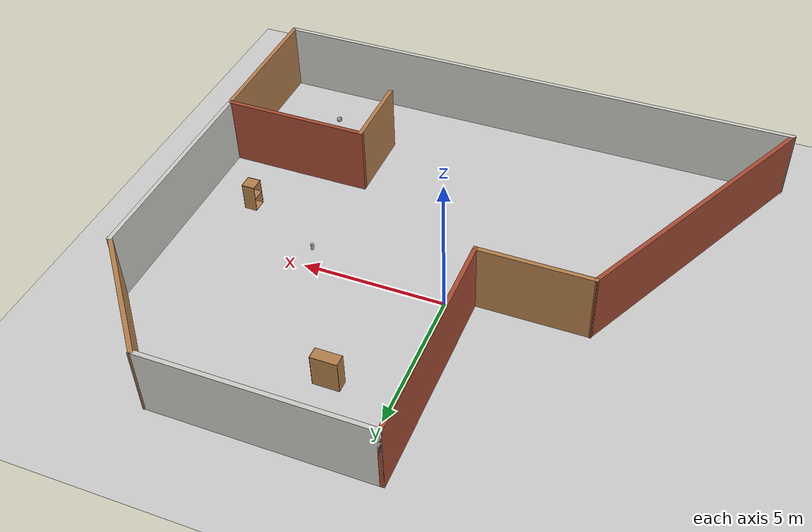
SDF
<sdf version="1.6">
 <world name="default">
  <light name="sun" type="directional">
   <pose>0 0 10 0 -0 0</pose>
   <diffuse>0.8 0.8 0.8 1</diffuse>
   <specular>0.2 0.2 0.2 1</specular>
   <attenuation>
    <range>1000</range>
    <constant>0.9</constant>
    <linear>0.01</linear>
    <quadratic>0.001</quadratic>
   </attenuation>
   <direction>-0.5 0.1 -0.9</direction>
  </light>
  <model name="ground_plane">
   <static>1</static>
   <link name="link">
    <collision name="collision">
     <geometry><plane><normal>0 0 1</normal><size>100 100</size></plane></geometry>
     <surface>
      <contact><collide_bitmask>65535</collide_bitmask></contact>
      <friction><ode><mu>100</mu><mu2>50</mu2></ode></friction>
     </surface>
    </collision>
    <visual name="visual">
     <cast_shadows>0</cast_shadows>
     <geometry><plane><normal>0 0 1</normal><size>100 100</size></plane></geometry>
     <material>
      <script><uri>file://media/materials/scripts/gazebo.material</uri><name>Gazebo/Grey</name></script>
     </material>
    </visual>
   </link>
  </model>
  <gravity>0 0 -9.8</gravity>
  <magnetic_field>6e-06 2.3e-05 -4.2e-05</magnetic_field>
  <atmosphere type="adiabatic"/>
  <physics name="default_physics" default="0" type="ode">
   <max_step_size>0.001</max_step_size>
   <real_time_factor>1</real_time_factor>
   <real_time_update_rate>1000</real_time_update_rate>
  </physics>
  <scene><ambient>0.4 0.4 0.4 1</ambient><background>0.7 0.7 0.7 1</background><shadows>1</shadows></scene>
  <audio><device>default</device></audio>
  <spherical_coordinates>
   <surface_model>EARTH_WGS84</surface_model>
   <latitude_deg>0</latitude_deg>
   <longitude_deg>0</longitude_deg>
   <elevation>0</elevation>
   <heading_deg>0</heading_deg>
  </spherical_coordinates>
  <model name="third_map">
   <pose>0.315848 -1.22978 0 0 -0 0</pose>
   <link name="Wall_21">
    <collision name="Wall_21_Collision">
     <geometry><box><size>7.5 0.15 2.5</size></box></geometry>
     <pose>0 0 1.25 0 -0 0</pose>
    </collision>
    <visual name="Wall_21_Visual">
     <pose>0 0 1.25 0 -0 0</pose>
     <geometry><box><size>7.5 0.15 2.5</size></box></geometry>
     <material>
      <script><uri>file://media/materials/scripts/gazebo.material</uri><name>Gazebo/Bricks</name></script>
      <ambient>1 1 1 1</ambient>
     </material>
     <meta><layer>0</layer></meta>
    </visual>
    <pose>-1.2026 4.5474 0 0 -0 1.5708</pose>
   </link>
   <link name="Wall_22">
    <collision name="Wall_22_Collision">
     <geometry><box><size>7.75 0.15 2.5</size></box></geometry>
     <pose>0 0 1.25 0 -0 0</pose>
    </collision>
    <visual name="Wall_22_Visual">
     <pose>0 0 1.25 0 -0 0</pose>
     <geometry><box><size>7.75 0.15 2.5</size></box></geometry>
     <material>
      <script><uri>file://media/materials/scripts/gazebo.material</uri><name>Gazebo/CeilingTiled</name></script>
      <ambient>1 1 1 1</ambient>
     </material>
     <meta><layer>0</layer></meta>
    </visual>
    <pose>2.5974 8.2224 0 0 -0 0</pose>
   </link>
   <link name="Wall_26">
    <collision name="Wall_26_Collision">
     <geometry><box><size>7.75 0.15 2.5</size></box></geometry>
     <pose>0 0 1.25 0 -0 0</pose>
    </collision>
    <visual name="Wall_26_Visual">
     <pose>0 0 1.25 0 -0 0</pose>
     <geometry><box><size>7.75 0.15 2.5</size></box></geometry>
     <material>
      <script><uri>file://media/materials/scripts/gazebo.material</uri><name>Gazebo/CeilingTiled</name></script>
      <ambient>1 1 1 1</ambient>
     </material>
     <meta><layer>0</layer></meta>
    </visual>
    <pose>9.5474 0.672404 0 0 -0 1.5708</pose>
   </link>
   <link name="Wall_27">
    <collision name="Wall_27_Collision">
     <geometry><box><size>5.04745 0.15 2.5</size></box></geometry>
     <pose>0 0 1.25 0 -0 0</pose>
    </collision>
    <visual name="Wall_27_Visual">
     <pose>0 0 1.25 0 -0 0</pose>
     <geometry><box><size>5.04745 0.15 2.5</size></box></geometry>
     <material>
      <script><uri>file://media/materials/scripts/gazebo.material</uri><name>Gazebo/Wood</name></script>
      <ambient>1 1 1 1</ambient>
     </material>
     <meta><layer>0</layer></meta>
    </visual>
    <pose>7.9724 6.3474 0 0 -0 2.26946</pose>
   </link>
   <link name="Wall_30">
    <collision name="Wall_30_Collision">
     <geometry><box><size>4 0.15 2.5</size></box></geometry>
     <pose>0 0 1.25 0 -0 0</pose>
    </collision>
    <visual name="Wall_30_Visual">
     <pose>0 0 1.25 0 -0 0</pose>
     <geometry><box><size>4 0.15 2.5</size></box></geometry>
     <material>
      <script><uri>file://media/materials/scripts/gazebo.material</uri><name>Gazebo/Wood</name></script>
      <ambient>1 1 1 1</ambient>
     </material>
     <meta><layer>0</layer></meta>
    </visual>
    <pose>-3.1276 0.872404 0 0 -0 3.14159</pose>
   </link>
   <link name="Wall_31">
    <collision name="Wall_31_Collision">
     <geometry><box><size>10.3018 0.15 2.5</size></box></geometry>
     <pose>0 0 1.25 0 -0 0</pose>
    </collision>
    <visual name="Wall_31_Visual">
     <pose>0 0 1.25 0 -0 0</pose>
     <geometry><box><size>10.3018 0.15 2.5</size></box></geometry>
     <material>
      <script><uri>file://media/materials/scripts/gazebo.material</uri><name>Gazebo/Bricks</name></script>
      <ambient>1 1 1 1</ambient>
     </material>
     <meta><layer>0</layer></meta>
    </visual>
    <pose>-7.3026 -3.6776 0 0 -0 -2.03004</pose>
   </link>
   <link name="Wall_6">
    <collision name="Wall_6_Collision">
     <geometry><box><size>19.25 0.15 2.5</size></box></geometry>
     <pose>0 0 1.25 0 -0 0</pose>
    </collision>
    <visual name="Wall_6_Visual">
     <pose>0 0 1.25 0 -0 0</pose>
     <geometry><box><size>19.25 0.15 2.5</size></box></geometry>
     <material>
      <script><uri>file://media/materials/scripts/gazebo.material</uri><name>Gazebo/CeilingTiled</name></script>
      <ambient>1 1 1 1</ambient>
     </material>
     <meta><layer>0</layer></meta>
    </visual>
    <pose>-0.002596 -8.2276 0 0 -0 0</pose>
   </link>
   <link name="Wall_7">
    <collision name="Wall_7_Collision">
     <geometry><box><size>5.25 0.15 2.5</size></box></geometry>
     <pose>0 0 1.25 0 -0 0</pose>
    </collision>
    <visual name="Wall_7_Visual">
     <pose>0 0 1.25 0 -0 0</pose>
     <geometry><box><size>5.25 0.15 2.5</size></box></geometry>
     <material>
      <script><uri>file://media/materials/scripts/gazebo.material</uri><name>Gazebo/Wood</name></script>
      <ambient>1 1 1 1</ambient>
     </material>
     <meta><layer>0</layer></meta>
    </visual>
    <pose>9.5474 -5.6776 0 0 -0 1.5708</pose>
   </link>
   <link name="Wall_8">
    <collision name="Wall_8_Collision">
     <geometry><box><size>5.25 0.15 2.5</size></box></geometry>
     <pose>0 0 1.25 0 -0 0</pose>
    </collision>
    <visual name="Wall_8_Visual">
     <pose>0 0 1.25 0 -0 0</pose>
     <geometry><box><size>5.25 0.15 2.5</size></box></geometry>
     <material>
      <script><uri>file://media/materials/scripts/gazebo.material</uri><name>Gazebo/Bricks</name></script>
      <ambient>1 1 1 1</ambient>
     </material>
     <meta><layer>0</layer></meta>
    </visual>
    <pose>6.9974 -3.1276 0 0 -0 3.14159</pose>
   </link>
   <link name="Wall_9">
    <collision name="Wall_9_Collision">
     <geometry><box><size>2.75 0.15 2.5</size></box></geometry>
     <pose>0 0 1.25 0 -0 0</pose>
    </collision>
    <visual name="Wall_9_Visual">
     <pose>0 0 1.25 0 -0 0</pose>
     <geometry><box><size>2.75 0.15 2.5</size></box></geometry>
     <material>
      <script><uri>file://media/materials/scripts/gazebo.material</uri><name>Gazebo/Wood</name></script>
      <ambient>1 1 1 1</ambient>
     </material>
     <meta><layer>0</layer></meta>
    </visual>
    <pose>4.4474 -4.4276 0 0 -0 -1.5708</pose>
   </link>
   <static>1</static>
  </model>
  <model name="bookshelf">
   <static>1</static>
   <link name="link">
    <inertial><mass>1</mass></inertial>
    <collision name="back">
     <pose>0 0.005 0.6 0 -0 0</pose>
     <geometry><box><size>0.9 0.01 1.2</size></box></geometry>
    </collision>
    <visual name="visual1">
     <pose>0 0.005 0.6 0 -0 0</pose>
     <geometry><box><size>0.9 0.01 1.2</size></box></geometry>
     <material>
      <script><uri>file://media/materials/scripts/gazebo.material</uri><name>Gazebo/Wood</name></script>
     </material>
    </visual>
    <collision name="left_side">
     <pose>0.45 -0.195 0.6 0 -0 0</pose>
     <geometry><box><size>0.02 0.4 1.2</size></box></geometry>
    </collision>
    <visual name="visual2">
     <pose>0.45 -0.195 0.6 0 -0 0</pose>
     <geometry><box><size>0.02 0.4 1.2</size></box></geometry>
     <material>
      <script><uri>file://media/materials/scripts/gazebo.material</uri><name>Gazebo/Wood</name></script>
     </material>
    </visual>
    <collision name="right_side">
     <pose>-0.45 -0.195 0.6 0 -0 0</pose>
     <geometry><box><size>0.02 0.4 1.2</size></box></geometry>
    </collision>
    <visual name="visual3">
     <pose>-0.45 -0.195 0.6 0 -0 0</pose>
     <geometry><box><size>0.02 0.4 1.2</size></box></geometry>
     <material>
      <script><uri>file://media/materials/scripts/gazebo.material</uri><name>Gazebo/Wood</name></script>
     </material>
    </visual>
    <collision name="bottom">
     <pose>0 -0.195 0.03 0 -0 0</pose>
     <geometry><box><size>0.88 0.4 0.06</size></box></geometry>
    </collision>
    <visual name="visual4">
     <pose>0 -0.195 0.03 0 -0 0</pose>
     <geometry><box><size>0.88 0.4 0.06</size></box></geometry>
     <material>
      <script><uri>file://media/materials/scripts/gazebo.material</uri><name>Gazebo/Wood</name></script>
     </material>
    </visual>
    <collision name="top">
     <pose>0 -0.195 1.19 0 -0 0</pose>
     <geometry><box><size>0.88 0.4 0.02</size></box></geometry>
    </collision>
    <visual name="visual5">
     <pose>0 -0.195 1.19 0 -0 0</pose>
     <geometry><box><size>0.88 0.4 0.02</size></box></geometry>
     <material>
      <script><uri>file://media/materials/scripts/gazebo.material</uri><name>Gazebo/Wood</name></script>
     </material>
    </visual>
    <collision name="low_shelf">
     <pose>0 -0.195 0.43 0 -0 0</pose>
     <geometry><box><size>0.88 0.4 0.02</size></box></geometry>
    </collision>
    <visual name="visual6">
     <pose>0 -0.195 0.43 0 -0 0</pose>
     <geometry><box><size>0.88 0.4 0.02</size></box></geometry>
     <material>
      <script><uri>file://media/materials/scripts/gazebo.material</uri><name>Gazebo/Wood</name></script>
     </material>
    </visual>
    <collision name="high_shelf">
     <pose>0 -0.195 0.8 0 -0 0</pose>
     <geometry><box><size>0.88 0.4 0.02</size></box></geometry>
    </collision>
    <visual name="visual7">
     <pose>0 -0.195 0.8 0 -0 0</pose>
     <geometry><box><size>0.88 0.4 0.02</size></box></geometry>
     <material>
      <script><uri>file://media/materials/scripts/gazebo.material</uri><name>Gazebo/Wood</name></script>
     </material>
    </visual>
   </link>
   <pose>2.08586 4.43968 0 0 -0 0</pose>
  </model>
  <model name="beer">
   <link name="link">
    <pose>0 0 0.115 0 -0 0</pose>
    <inertial>
     <mass>0.39</mass>
     <inertia><ixx>0.00058</ixx><ixy>0</ixy><ixz>0</ixz><iyy>0.00058</iyy><iyz>0</iyz><izz>0.00019</izz></inertia>
    </inertial>
    <collision name="collision">
     <geometry><cylinder><radius>0.055</radius><length>0.23</length></cylinder></geometry>
    </collision>
    <visual name="visual">
     <geometry><cylinder><radius>0.055</radius><length>0.23</length></cylinder></geometry>
     <material>
      <script>
       <uri>model://beer/materials/scripts</uri>
       <uri>model://beer/materials/textures</uri>
       <name>Beer/Diffuse</name>
      </script>
     </material>
    </visual>
   </link>
   <pose>5.10297 -0.829153 -7e-06 -1e-06 -0 -8e-06</pose>
  </model>
  <model name="my_ball">
   <link name="link_0">
    <inertial>
     <mass>1</mass>
     <inertia><ixx>0.1</ixx><ixy>0</ixy><ixz>0</ixz><iyy>0.1</iyy><iyz>0</iyz><izz>0.1</izz></inertia>
    </inertial>
    <visual name="visual">
     <geometry><sphere><radius>0.1</radius></sphere></geometry>
     <material>
      <lighting>1</lighting>
      <script><uri>file://media/materials/scripts/gazebo.material</uri><name>Gazebo/Grey</name></script>
      <shader type="vertex"><normal_map>__default__</normal_map></shader>
      <ambient>1 1 1 1</ambient>
      <diffuse>1 1 1 1</diffuse>
      <specular>1 1 1 1</specular>
      <emissive>1 1 1 1</emissive>
     </material>
    </visual>
    <collision name="collision">
     <geometry><sphere><radius>0.1</radius></sphere></geometry>
     <surface>
      <friction>
       <ode><mu>1</mu><mu2>1</mu2><fdir1>0 0 0</fdir1><slip1>0</slip1><slip2>0</slip2></ode>
       <torsional>
        <coefficient>1</coefficient>
        <patch_radius>0</patch_radius>
        <surface_radius>0</surface_radius>
        <use_patch_radius>1</use_patch_radius>
        <ode><slip>0</slip></ode>
       </torsional>
      </friction>
      <bounce><restitution_coefficient>0</restitution_coefficient><threshold>1e+06</threshold></bounce>
      <contact>
       <collide_without_contact>0</collide_without_contact>
       <collide_without_contact_bitmask>1</collide_without_contact_bitmask>
       <collide_bitmask>1</collide_bitmask>
       <ode>
        <soft_cfm>0</soft_cfm>
        <soft_erp>0.2</soft_erp>
        <kp>1e+13</kp>
        <kd>1</kd>
        <max_vel>0.01</max_vel>
        <min_depth>0</min_depth>
       </ode>
       <bullet>
        <split_impulse>1</split_impulse>
        <split_impulse_penetration_threshold>-0.01</split_impulse_penetration_threshold>
        <soft_cfm>0</soft_cfm>
        <soft_erp>0.2</soft_erp>
        <kp>1e+13</kp>
        <kd>1</kd>
       </bullet>
      </contact>
     </surface>
    </collision>
   </link>
   <static>0</static>
   <pose>7.24757 -7.61395 0.1 0 -0 0</pose>
  </model>
  <model name="cabinet">
   <static>1</static>
   <link name="cabinet_bottom_plate">
    <inertial>
     <pose>0 0 -1 0 -0 0</pose>
     <inertia><ixx>2.05</ixx><ixy>0</ixy><ixz>0</ixz><iyy>2.05</iyy><iyz>0</iyz><izz>2.05</izz></inertia>
     <mass>25</mass>
    </inertial>
    <collision name="cabinet_bottom_plate_geom">
     <pose>0 0 0.01 0 -0 0</pose>
     <geometry><box><size>0.45 0.45 0.02</size></box></geometry>
    </collision>
    <visual name="cabinet_bottom_plate_geom_visual">
     <pose>0 0 0.01 0 -0 0</pose>
     <geometry><box><size>0.45 0.45 0.02</size></box></geometry>
     <material>
      <script><uri>file://media/materials/scripts/gazebo.material</uri><name>Gazebo/Wood</name></script>
     </material>
    </visual>
    <collision name="cabinet_bottom_plate_geom_cabinet_back_plate">
     <pose>0.235 0 0.51 0 -0 0</pose>
     <geometry><box><size>0.02 0.45 1.02</size></box></geometry>
    </collision>
    <visual name="cabinet_bottom_plate_geom_cabinet_back_plate_visual">
     <pose>0.235 0 0.51 0 -0 0</pose>
     <geometry><box><size>0.02 0.45 1.02</size></box></geometry>
     <material>
      <script><uri>file://media/materials/scripts/gazebo.material</uri><name>Gazebo/Wood</name></script>
     </material>
    </visual>
    <collision name="cabinet_bottom_plate_geom_cabinet_left_plate">
     <pose>0 0.235 0.51 0 -0 0</pose>
     <geometry><box><size>0.45 0.02 1.02</size></box></geometry>
    </collision>
    <visual name="cabinet_bottom_plate_geom_cabinet_left_plate_visual">
     <pose>0 0.235 0.51 0 -0 0</pose>
     <geometry><box><size>0.45 0.02 1.02</size></box></geometry>
     <material>
      <script><uri>file://media/materials/scripts/gazebo.material</uri><name>Gazebo/Wood</name></script>
     </material>
    </visual>
    <collision name="cabinet_bottom_plate_geom_cabinet_middle_plate">
     <pose>0 0 0.51 0 -0 0</pose>
     <geometry><box><size>0.45 0.45 0.02</size></box></geometry>
    </collision>
    <visual name="cabinet_bottom_plate_geom_cabinet_middle_plate_visual">
     <pose>0 0 0.51 0 -0 0</pose>
     <geometry><box><size>0.45 0.45 0.02</size></box></geometry>
     <material>
      <script><uri>file://media/materials/scripts/gazebo.material</uri><name>Gazebo/Wood</name></script>
     </material>
    </visual>
    <collision name="cabinet_bottom_plate_geom_cabinet_right_plate">
     <pose>0 -0.235 0.51 0 -0 0</pose>
     <geometry><box><size>0.45 0.02 1.02</size></box></geometry>
    </collision>
    <visual name="cabinet_bottom_plate_geom_cabinet_right_plate_visual">
     <pose>0 -0.235 0.51 0 -0 0</pose>
     <geometry><box><size>0.45 0.02 1.02</size></box></geometry>
     <material>
      <script><uri>file://media/materials/scripts/gazebo.material</uri><name>Gazebo/Wood</name></script>
     </material>
    </visual>
    <collision name="cabinet_bottom_plate_geom_cabinet_top_plate">
     <pose>0 0 1.01 0 -0 0</pose>
     <geometry><box><size>0.45 0.45 0.02</size></box></geometry>
    </collision>
    <visual name="cabinet_bottom_plate_geom_cabinet_top_plate_visual">
     <pose>0 0 1.01 0 -0 0</pose>
     <geometry><box><size>0.45 0.45 0.02</size></box></geometry>
     <material>
      <script><uri>file://media/materials/scripts/gazebo.material</uri><name>Gazebo/Wood</name></script>
     </material>
    </visual>
   </link>
   <pose>8.01296 -2.12366 0 0 -0 0</pose>
  </model>
 </world>
</sdf>
